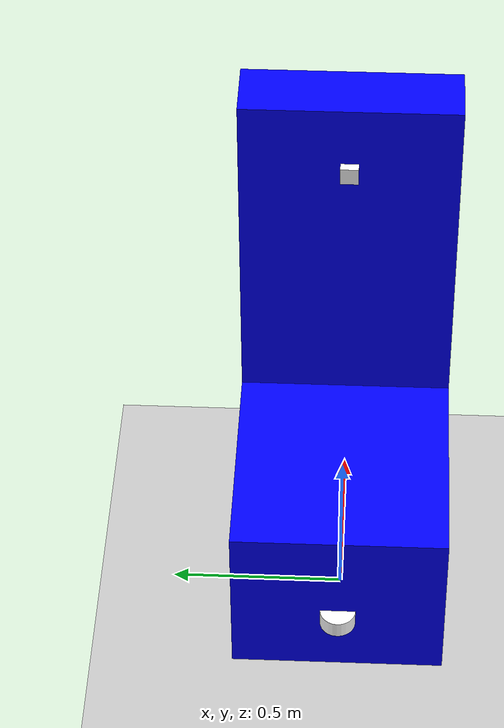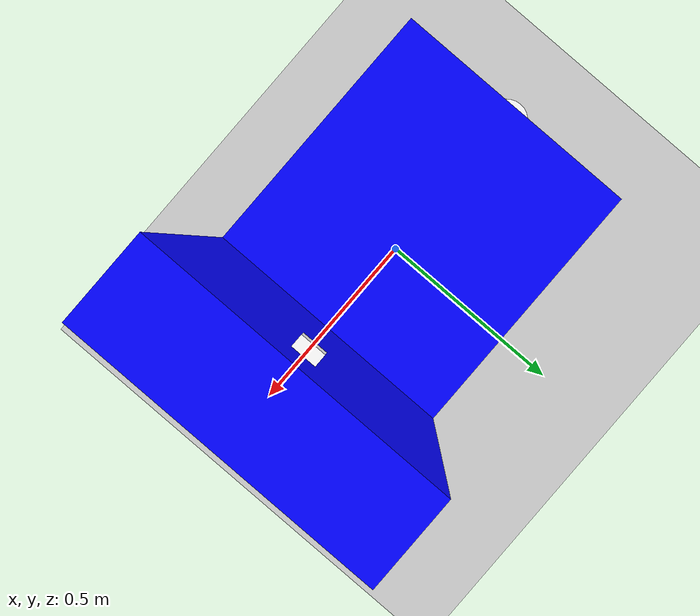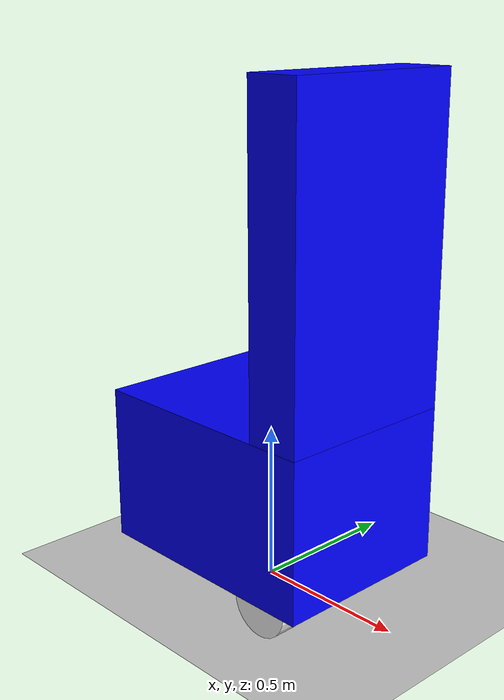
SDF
<?xml version="1.0" ?>
<sdf version="1.8">
    <world name="car_world">
        <physics name="1ms" type="ignored">
            <max_step_size>0.001</max_step_size>
            <real_time_factor>1.0</real_time_factor>
        </physics>
        <plugin
            filename="libignition-gazebo-physics-system.so"
            name="ignition::gazebo::systems::Physics">
        </plugin>
        <plugin
            filename="libignition-gazebo-user-commands-system.so"
            name="ignition::gazebo::systems::UserCommands">
        </plugin>
        <plugin
            filename="libignition-gazebo-scene-broadcaster-system.so"
            name="ignition::gazebo::systems::SceneBroadcaster">
        </plugin>

        <light type="directional" name="sun">
            <cast_shadows>true</cast_shadows>
            <pose>0 0 10 0 0 0</pose>
            <diffuse>0.8 0.8 0.8 1</diffuse>
            <specular>0.2 0.2 0.2 1</specular>
            <attenuation>
                <range>1000</range>
                <constant>0.9</constant>
                <linear>0.01</linear>
                <quadratic>0.001</quadratic>
            </attenuation>
            <direction>-0.5 0.1 -0.9</direction>

        </light>

                <model name="ground_plane">
            <static>true</static>
            <link name="link">
                <collision name="collision">
                <geometry>
                    <plane>
                    <normal>0 0 1</normal>
                    </plane>
                </geometry>
                </collision>
                <visual name="visual">
                <geometry>
                    <plane>
                    <normal>0 0 1</normal>
                    <size>100 100</size>
                    </plane>
                </geometry>
                <material>
                    <ambient>0.8 0.8 0.8 1</ambient>
                    <diffuse>0.8 0.8 0.8 1</diffuse>
                    <specular>0.8 0.8 0.8 1</specular>
                </material>
                </visual>
            </link>
        </model>

    <!-- our nomeer_robot model -->
    <model name='nomeer_robot' canonical_link='base'>

        <pose relative_to='world'>0 0 0 0 0 3.141592654</pose>
        <static>false</static>

        <!-- links-->
        <!-- odom -->
        <link name="odom">
            <pose relative_to="__model__">0 0 0 0 0 0</pose>
        </link>

        <!-- base -->
        <link name="base">

            <pose relative_to="odom">0 0 0.35 0 0 0</pose>

            <inertial>
                <mass>8.0</mass>
                <inertia>
                    <ixx>0.426667</ixx>
                    <ixy>0</ixy>
                    <ixz>0</ixz>
                    <iyy>0.24</iyy>
                    <iyz>0</iyz>
                    <izz>0.666667</izz>
                </inertia>
            </inertial>

            <visual name='visual'>
                <geometry>
                    <box>
                        <size>0.8 0.6 0.5</size>
                    </box>
                </geometry>
                <material> <!-- blue color -->
                    <ambient>0.0 0.0 1.0 1</ambient>
                    <diffuse>0.0 0.0 1.0 1</diffuse>
                    <specular>0.0 0.0 1.0 1</specular>
                </material>
            </visual>

            <collision name='collision'>
                <geometry>
                    <box>
                        <size>0.8 0.6 0.5</size>
                    </box>
                </geometry>
            </collision>

        </link>

        <!-- body-->
        <link name="body">

            <pose relative_to="base">-0.3125 0 0.75 0 1.5708 0</pose>

            <inertial>
                <mass>2.0</mass>
                <inertia>
                    <ixx>0.166667</ixx>
                    <ixy>0</ixy>
                    <ixz>0</ixz>
                    <iyy>0.06</iyy>
                    <iyz>0</iyz>
                    <izz>0.226667</izz>
                </inertia>
            </inertial>

            <visual name='visual'>
                <geometry>
                    <box>
                        <size>1.0 0.6 0.175</size>
                    </box>
                </geometry>
                <material> <!-- blue color -->
                    <ambient>0.0 0.0 1.0 1</ambient>
                    <diffuse>0.0 0.0 1.0 1</diffuse>
                    <specular>0.0 0.0 1.0 1</specular>
                </material>
            </visual>

            <collision name='collision'>
                <geometry>
                    <box>
                        <size>1.0 0.6 0.175</size>
                    </box>
                </geometry>
            </collision>

        </link>

        <!-- right_wheel-->
        <link name="right_wheel">

            <pose relative_to="base">-0.25 0.25 -0.25 1.5707 0 0</pose>

            <inertial>
                <mass>0.4</mass>
                <inertia>
                    <ixx>0.001213</ixx>
                    <ixy>0</ixy>
                    <ixz>0</ixz>
                    <iyy>0.001213</iyy>
                    <iyz>0</iyz>
                    <izz>0.002</izz>
                </inertia>
            </inertial>

            <visual name='visual'>
                <geometry>
                    <cylinder>
                        <radius>0.1</radius>
                        <length>0.08</length>
                    </cylinder>
                </geometry>
                <material> <!-- white color -->
                    <ambient>1.0 1.0 1.0 1.0</ambient>
                    <diffuse>1.0 1.0 1.0 1.0</diffuse>
                    <specular>1.0 1.0 1.0 1.0</specular>
                </material>
            </visual>

            <collision name='collision'>
                <geometry>
                    <cylinder>
                        <radius>0.1</radius>
                        <length>0.08</length>
                    </cylinder>
                </geometry>
            </collision>

        </link>

        <!-- left_wheel-->
        <link name="left_wheel">

            <pose relative_to="base">-0.25 -0.25 -0.25 1.5707 0 0</pose>

            <inertial>
                <mass>0.4</mass>
                <inertia>
                    <ixx>0.001213</ixx>
                    <ixy>0</ixy>
                    <ixz>0</ixz>
                    <iyy>0.001213</iyy>
                    <iyz>0</iyz>
                    <izz>0.002</izz>
                </inertia>
            </inertial>

            <visual name='visual'>
                <geometry>
                    <cylinder>
                        <radius>0.1</radius>
                        <length>0.08</length>
                    </cylinder>
                </geometry>
                <material> <!-- white color -->
                    <ambient>1.0 1.0 1.0 1.0</ambient>
                    <diffuse>1.0 1.0 1.0 1.0</diffuse>
                    <specular>1.0 1.0 1.0 1.0</specular>
                </material>
            </visual>

            <collision name='collision'>
                <geometry>
                    <cylinder>
                        <radius>0.1</radius>
                        <length>0.08</length>
                    </cylinder>
                </geometry>
            </collision>

        </link>

        <!-- caster-->
        <link name="caster">

            <pose relative_to="base">0.25 0 -0.28 0 0 0</pose>

            <inertial>
                <mass>0.3</mass>
                <inertia>
                    <ixx>0.0012</ixx>
                    <ixy>0</ixy>
                    <ixz>0</ixz>
                    <iyy>0.0012</iyy>
                    <iyz>0</iyz>
                    <izz>0.0012</izz>
                </inertia>
            </inertial>

            <visual name='visual'>
                <geometry>
                    <sphere>
                        <radius>0.06</radius>
                    </sphere>
                </geometry>
                <material> <!-- white color -->
                    <ambient>1.0 1.0 1.0 1.0</ambient>
                    <diffuse>1.0 1.0 1.0 1.0</diffuse>
                    <specular>1.0 1.0 1.0 1.0</specular>
                </material>
            </visual>

            <collision name='collision'>
                <geometry>
                    <sphere>
                        <radius>0.06</radius>
                    </sphere>
                </geometry>
            </collision>

        </link>

        <!-- camera-->
        <link name="camera">

            <pose relative_to="base">-0.225 0 1.05 0 0 0</pose>

            <visual name='visual'>
                <geometry>
                    <box>
                        <size>0.05 0.05 0.05</size>
                    </box>
                </geometry>
                <material> <!-- white color -->
                    <ambient>1.0 1.0 1.0 1.0</ambient>
                    <diffuse>1.0 1.0 1.0 1.0</diffuse>
                    <specular>1.0 1.0 1.0 1.0</specular>
                </material>
            </visual>

            <collision name='collision'>
                <geometry>
                    <box>
                        <size>0.05 0.05 0.05</size>
                    </box>
                </geometry>
            </collision>

        </link>

        <!-- lidar-->
        <link name="lidar">

            <pose relative_to="base">0.4 0 -0.05 0 0 0</pose>

            <visual name='visual'>
                <geometry>
                    <cylinder>
                        <radius>0.05</radius>
                        <length>0.05</length>
                    </cylinder>
                </geometry>
                <material> <!-- white color -->
                    <ambient>1.0 1.0 1.0 1.0</ambient>
                    <diffuse>1.0 1.0 1.0 1.0</diffuse>
                    <specular>1.0 1.0 1.0 1.0</specular>
                </material>
            </visual>

            <collision name='collision'>
                <geometry>
                    <cylinder>
                        <radius>0.05</radius>
                        <length>0.05</length>
                    </cylinder>
                </geometry>
            </collision>

        </link>

        <!-- joins -->
        <!-- base_joint -->
        <joint name="base_joint" type="fixed">
            <pose relative_to='base' />
            <parent>odom</parent>
            <child>base</child>
        </joint>

        <!-- body_joint -->
        <joint name="body_joint" type="fixed">
            <pose relative_to='body' />
            <parent>base</parent>
            <child>body</child>
        </joint>

        <!-- right_wheel_joint -->
        <joint name='right_wheel_joint' type='revolute'>
            <pose relative_to='right_wheel' />
            <parent>base</parent>
            <child>right_wheel</child>
            <axis>
                <xyz expressed_in='__model__'>0 1 0</xyz>
                <limit>
                    <lower>-1.79769e+308</lower>    <!--negative
                    infinity-->
                    <upper>1.79769e+308</upper>     <!--positive
                    infinity-->
                </limit>
            </axis>
        </joint>

        <!-- left_wheel_joint -->
        <joint name='left_wheel_joint' type='revolute'>
            <pose relative_to='left_wheel' />
            <parent>base</parent>
            <child>left_wheel</child>
            <axis>
                <xyz expressed_in='__model__'>0 1 0</xyz>
                <limit>
                    <lower>-1.79769e+308</lower>    <!--negative
                    infinity-->
                    <upper>1.79769e+308</upper>     <!--positive
                    infinity-->
                </limit>
            </axis>
        </joint>

        <!-- caster -->
        <joint name='caster_joint' type='ball'>
            <parent>base</parent>
            <child>caster</child>
        </joint>

        <!-- camera_joint -->
        <joint name="camera_joint" type="fixed">
            <pose relative_to='camera' />
            <parent>base</parent>
            <child>camera</child>
        </joint>

        <!-- lidar_joint -->
        <joint name="lidar_joint" type="fixed">
            <pose relative_to='lidar' />
            <parent>base</parent>
            <child>lidar</child>
        </joint>

        <!-- plugins -->
        <!-- diff_drive_plugin -->
        <plugin
            filename="libignition-gazebo-diff-drive-system.so"
            name="ignition::gazebo::systems::DiffDrive">
            <left_joint>left_wheel_joint</left_joint>
            <right_joint>right_wheel_joint</right_joint>
            <wheel_separation>0.5</wheel_separation>
            <wheel_radius>0.1</wheel_radius>
            <odom_publish_frequency>1</odom_publish_frequency>
            <topic>cmd_vel</topic>
        </plugin>

    </model>

    </world>
</sdf>
